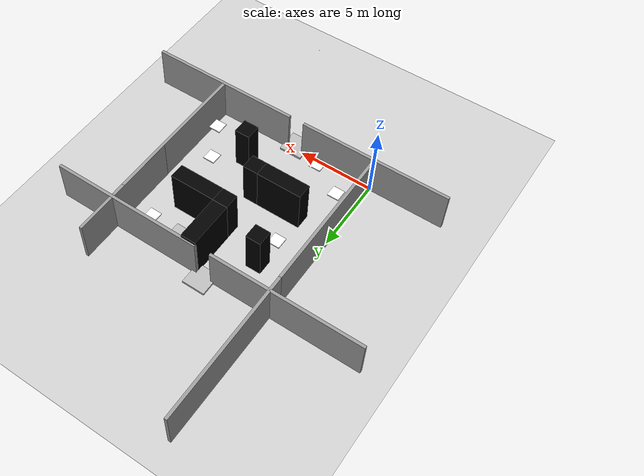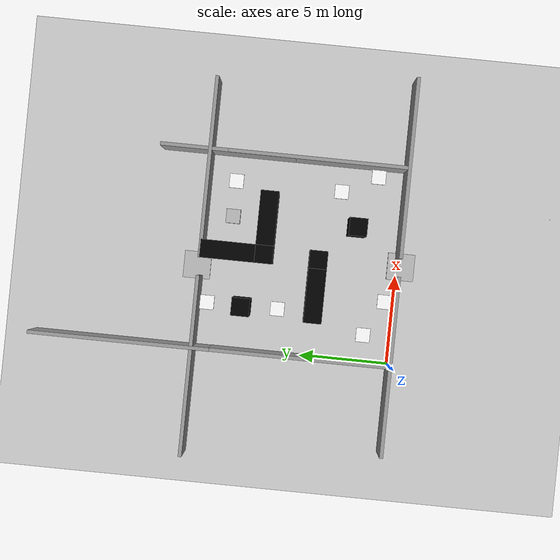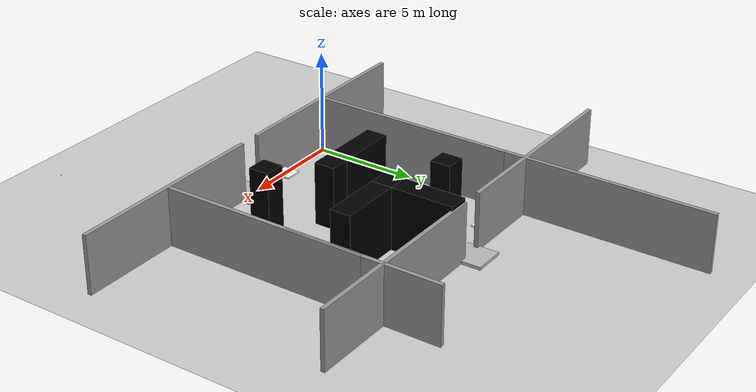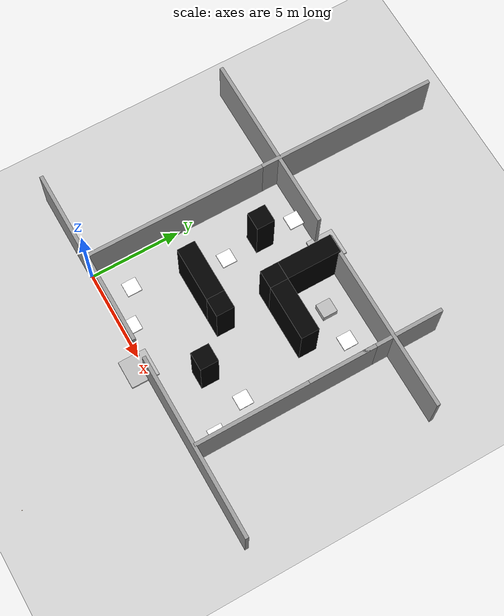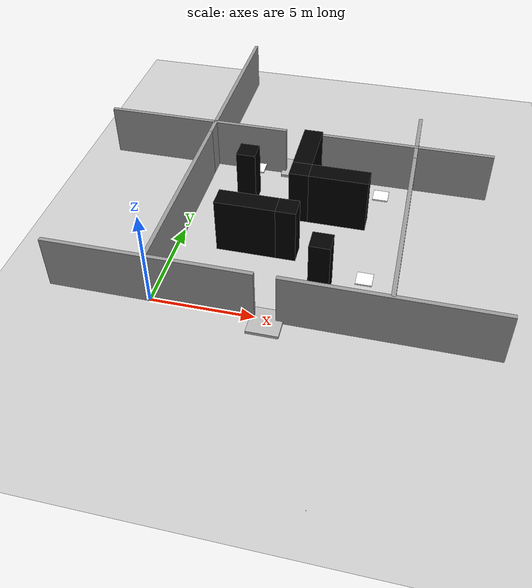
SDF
<sdf version="1.7">
 <world name="default">
  <plugin name="ros_interface_plugin" filename="librotors_gazebo_ros_interface_plugin.so"/>
  <light name="sun" type="directional">
   <pose>0 0 10 0 -0 0</pose>
   <diffuse>0.8 0.8 0.8 1</diffuse>
   <specular>0.2 0.2 0.2 1</specular>
   <attenuation>
    <range>1000</range>
    <constant>0.9</constant>
    <linear>0.01</linear>
    <quadratic>0.001</quadratic>
   </attenuation>
   <direction>-0.5 0.1 -0.9</direction>
   <spot><inner_angle>0</inner_angle><outer_angle>0</outer_angle><falloff>0</falloff></spot>
  </light>
  <model name="ground_plane">
   <static>1</static>
   <link name="link">
    <collision name="collision">
     <geometry><plane><normal>0 0 1</normal><size>100 100</size></plane></geometry>
     <surface><friction><ode><mu>100</mu><mu2>50</mu2></ode></friction></surface>
    </collision>
    <visual name="visual">
     <cast_shadows>0</cast_shadows>
     <geometry><plane><normal>0 0 1</normal><size>100 100</size></plane></geometry>
     <material>
      <script><uri>file://media/materials/scripts/gazebo.material</uri><name>Gazebo/Grey</name></script>
     </material>
    </visual>
   </link>
  </model>
  <gravity>0 0 -9.8</gravity>
  <magnetic_field>6e-06 2.3e-05 -4.2e-05</magnetic_field>
  <atmosphere type="adiabatic"/>
  <physics name="default_physics" default="0" type="ode">
   <max_step_size>0.01</max_step_size>
   <real_time_factor>1</real_time_factor>
   <real_time_update_rate>100</real_time_update_rate>
  </physics>
  <scene><ambient>0.4 0.4 0.4 1</ambient><background>0.7 0.7 0.7 1</background><shadows>1</shadows></scene>
  <audio><device>default</device></audio>
  <spherical_coordinates>
   <surface_model>EARTH_WGS84</surface_model>
   <latitude_deg>0</latitude_deg>
   <longitude_deg>0</longitude_deg>
   <elevation>0</elevation>
   <heading_deg>0</heading_deg>
  </spherical_coordinates>
  <model name="grey_wall_10">
   <link name="link">
    <pose>0 0 1.4 0 -0 0</pose>
    <inertial>
     <mass>1</mass>
     <inertia><ixx>1</ixx><ixy>0</ixy><ixz>0</ixz><iyy>1</iyy><iyz>0</iyz><izz>1</izz></inertia>
    </inertial>
    <visual name="visual">
     <cast_shadows>0</cast_shadows>
     <geometry><box><size>10 0.2 2.8</size></box></geometry>
     <material>
      <script>
       <uri>model://grey_wall/materials/scripts</uri>
       <uri>model://grey_wall/materials/textures</uri>
       <name>vrc/grey_wall</name>
      </script>
      <shader type="vertex"><normal_map>__default__</normal_map></shader>
      <ambient>1 1 1 1</ambient>
      <diffuse>1 1 1 1</diffuse>
      <specular>0 0 0 1</specular>
      <emissive>0 0 0 1</emissive>
     </material>
    </visual>
    <collision name="collision">
     <geometry><box><size>10 0.2 2.8</size></box></geometry>
     <surface>
      <friction>
       <ode><mu>1</mu><mu2>1</mu2><fdir1>0 0 0</fdir1><slip1>0</slip1><slip2>0</slip2></ode>
       <torsional>
        <coefficient>1</coefficient>
        <patch_radius>0</patch_radius>
        <surface_radius>0</surface_radius>
        <use_patch_radius>1</use_patch_radius>
        <ode><slip>0</slip></ode>
       </torsional>
      </friction>
      <bounce><restitution_coefficient>0</restitution_coefficient><threshold>1e+06</threshold></bounce>
      <contact>
       <collide_without_contact>0</collide_without_contact>
       <collide_without_contact_bitmask>1</collide_without_contact_bitmask>
       <collide_bitmask>1</collide_bitmask>
       <ode>
        <soft_cfm>0</soft_cfm>
        <soft_erp>0.2</soft_erp>
        <kp>1e+13</kp>
        <kd>1</kd>
        <max_vel>0.01</max_vel>
        <min_depth>0</min_depth>
       </ode>
       <bullet>
        <split_impulse>1</split_impulse>
        <split_impulse_penetration_threshold>-0.01</split_impulse_penetration_threshold>
        <soft_cfm>0</soft_cfm>
        <soft_erp>0.2</soft_erp>
        <kp>1e+13</kp>
        <kd>1</kd>
       </bullet>
      </contact>
     </surface>
    </collision>
   </link>
   <static>1</static>
  </model>
  <model name="grey_wall_10_0">
   <link name="link">
    <pose>0 0 1.4 0 -0 0</pose>
    <inertial>
     <mass>1</mass>
     <inertia><ixx>1</ixx><ixy>0</ixy><ixz>0</ixz><iyy>1</iyy><iyz>0</iyz><izz>1</izz></inertia>
    </inertial>
    <visual name="visual">
     <cast_shadows>0</cast_shadows>
     <geometry><box><size>10 0.2 2.8</size></box></geometry>
     <material>
      <script>
       <uri>model://grey_wall/materials/scripts</uri>
       <uri>model://grey_wall/materials/textures</uri>
       <name>vrc/grey_wall</name>
      </script>
      <shader type="vertex"><normal_map>__default__</normal_map></shader>
      <ambient>1 1 1 1</ambient>
      <diffuse>1 1 1 1</diffuse>
      <specular>0 0 0 1</specular>
      <emissive>0 0 0 1</emissive>
     </material>
    </visual>
    <collision name="collision">
     <geometry><box><size>10 0.2 2.8</size></box></geometry>
     <surface>
      <friction>
       <ode><mu>1</mu><mu2>1</mu2><fdir1>0 0 0</fdir1><slip1>0</slip1><slip2>0</slip2></ode>
       <torsional>
        <coefficient>1</coefficient>
        <patch_radius>0</patch_radius>
        <surface_radius>0</surface_radius>
        <use_patch_radius>1</use_patch_radius>
        <ode><slip>0</slip></ode>
       </torsional>
      </friction>
      <bounce><restitution_coefficient>0</restitution_coefficient><threshold>1e+06</threshold></bounce>
      <contact>
       <collide_without_contact>0</collide_without_contact>
       <collide_without_contact_bitmask>1</collide_without_contact_bitmask>
       <collide_bitmask>1</collide_bitmask>
       <ode>
        <soft_cfm>0</soft_cfm>
        <soft_erp>0.2</soft_erp>
        <kp>1e+13</kp>
        <kd>1</kd>
        <max_vel>0.01</max_vel>
        <min_depth>0</min_depth>
       </ode>
       <bullet>
        <split_impulse>1</split_impulse>
        <split_impulse_penetration_threshold>-0.01</split_impulse_penetration_threshold>
        <soft_cfm>0</soft_cfm>
        <soft_erp>0.2</soft_erp>
        <kp>1e+13</kp>
        <kd>1</kd>
       </bullet>
      </contact>
     </surface>
    </collision>
   </link>
   <static>1</static>
   <pose>10 11 0 0 -0 0</pose>
  </model>
  <model name="grey_wall_10_1">
   <link name="link">
    <pose>0 0 1.4 0 -0 0</pose>
    <inertial>
     <mass>1</mass>
     <inertia><ixx>1</ixx><ixy>0</ixy><ixz>0</ixz><iyy>1</iyy><iyz>0</iyz><izz>1</izz></inertia>
    </inertial>
    <visual name="visual">
     <cast_shadows>0</cast_shadows>
     <geometry><box><size>10 0.2 2.8</size></box></geometry>
     <material>
      <script>
       <uri>model://grey_wall/materials/scripts</uri>
       <uri>model://grey_wall/materials/textures</uri>
       <name>vrc/grey_wall</name>
      </script>
      <shader type="vertex"><normal_map>__default__</normal_map></shader>
      <ambient>1 1 1 1</ambient>
      <diffuse>1 1 1 1</diffuse>
      <specular>0 0 0 1</specular>
      <emissive>0 0 0 1</emissive>
     </material>
    </visual>
    <collision name="collision">
     <geometry><box><size>10 0.2 2.8</size></box></geometry>
     <surface>
      <friction>
       <ode><mu>1</mu><mu2>1</mu2><fdir1>0 0 0</fdir1><slip1>0</slip1><slip2>0</slip2></ode>
       <torsional>
        <coefficient>1</coefficient>
        <patch_radius>0</patch_radius>
        <surface_radius>0</surface_radius>
        <use_patch_radius>1</use_patch_radius>
        <ode><slip>0</slip></ode>
       </torsional>
      </friction>
      <bounce><restitution_coefficient>0</restitution_coefficient><threshold>1e+06</threshold></bounce>
      <contact>
       <collide_without_contact>0</collide_without_contact>
       <collide_without_contact_bitmask>1</collide_without_contact_bitmask>
       <collide_bitmask>1</collide_bitmask>
       <ode>
        <soft_cfm>0</soft_cfm>
        <soft_erp>0.2</soft_erp>
        <kp>1e+13</kp>
        <kd>1</kd>
        <max_vel>0.01</max_vel>
        <min_depth>0</min_depth>
       </ode>
       <bullet>
        <split_impulse>1</split_impulse>
        <split_impulse_penetration_threshold>-0.01</split_impulse_penetration_threshold>
        <soft_cfm>0</soft_cfm>
        <soft_erp>0.2</soft_erp>
        <kp>1e+13</kp>
        <kd>1</kd>
       </bullet>
      </contact>
     </surface>
    </collision>
   </link>
   <static>1</static>
   <pose>11 0 0 0 -0 0</pose>
  </model>
  <model name="grey_wall_10_2">
   <link name="link">
    <pose>0 0 1.4 0 -0 0</pose>
    <inertial>
     <mass>1</mass>
     <inertia><ixx>1</ixx><ixy>0</ixy><ixz>0</ixz><iyy>1</iyy><iyz>0</iyz><izz>1</izz></inertia>
    </inertial>
    <visual name="visual">
     <cast_shadows>0</cast_shadows>
     <geometry><box><size>10 0.2 2.8</size></box></geometry>
     <material>
      <script>
       <uri>model://grey_wall/materials/scripts</uri>
       <uri>model://grey_wall/materials/textures</uri>
       <name>vrc/grey_wall</name>
      </script>
      <shader type="vertex"><normal_map>__default__</normal_map></shader>
      <ambient>1 1 1 1</ambient>
      <diffuse>1 1 1 1</diffuse>
      <specular>0 0 0 1</specular>
      <emissive>0 0 0 1</emissive>
     </material>
    </visual>
    <collision name="collision">
     <geometry><box><size>10 0.2 2.8</size></box></geometry>
     <surface>
      <friction>
       <ode><mu>1</mu><mu2>1</mu2><fdir1>0 0 0</fdir1><slip1>0</slip1><slip2>0</slip2></ode>
       <torsional>
        <coefficient>1</coefficient>
        <patch_radius>0</patch_radius>
        <surface_radius>0</surface_radius>
        <use_patch_radius>1</use_patch_radius>
        <ode><slip>0</slip></ode>
       </torsional>
      </friction>
      <bounce><restitution_coefficient>0</restitution_coefficient><threshold>1e+06</threshold></bounce>
      <contact>
       <collide_without_contact>0</collide_without_contact>
       <collide_without_contact_bitmask>1</collide_without_contact_bitmask>
       <collide_bitmask>1</collide_bitmask>
       <ode>
        <soft_cfm>0</soft_cfm>
        <soft_erp>0.2</soft_erp>
        <kp>1e+13</kp>
        <kd>1</kd>
        <max_vel>0.01</max_vel>
        <min_depth>0</min_depth>
       </ode>
       <bullet>
        <split_impulse>1</split_impulse>
        <split_impulse_penetration_threshold>-0.01</split_impulse_penetration_threshold>
        <soft_cfm>0</soft_cfm>
        <soft_erp>0.2</soft_erp>
        <kp>1e+13</kp>
        <kd>1</kd>
       </bullet>
      </contact>
     </surface>
    </collision>
   </link>
   <static>1</static>
   <pose>0 5 0 0 -0 1.57</pose>
  </model>
  <model name="grey_wall_10_3">
   <link name="link">
    <pose>0 0 1.4 0 -0 0</pose>
    <inertial>
     <mass>1</mass>
     <inertia><ixx>1</ixx><ixy>0</ixy><ixz>0</ixz><iyy>1</iyy><iyz>0</iyz><izz>1</izz></inertia>
    </inertial>
    <visual name="visual">
     <cast_shadows>0</cast_shadows>
     <geometry><box><size>10 0.2 2.8</size></box></geometry>
     <material>
      <script>
       <uri>model://grey_wall/materials/scripts</uri>
       <uri>model://grey_wall/materials/textures</uri>
       <name>vrc/grey_wall</name>
      </script>
      <shader type="vertex"><normal_map>__default__</normal_map></shader>
      <ambient>1 1 1 1</ambient>
      <diffuse>1 1 1 1</diffuse>
      <specular>0 0 0 1</specular>
      <emissive>0 0 0 1</emissive>
     </material>
    </visual>
    <collision name="collision">
     <geometry><box><size>10 0.2 2.8</size></box></geometry>
     <surface>
      <friction>
       <ode><mu>1</mu><mu2>1</mu2><fdir1>0 0 0</fdir1><slip1>0</slip1><slip2>0</slip2></ode>
       <torsional>
        <coefficient>1</coefficient>
        <patch_radius>0</patch_radius>
        <surface_radius>0</surface_radius>
        <use_patch_radius>1</use_patch_radius>
        <ode><slip>0</slip></ode>
       </torsional>
      </friction>
      <bounce><restitution_coefficient>0</restitution_coefficient><threshold>1e+06</threshold></bounce>
      <contact>
       <collide_without_contact>0</collide_without_contact>
       <collide_without_contact_bitmask>1</collide_without_contact_bitmask>
       <collide_bitmask>1</collide_bitmask>
       <ode>
        <soft_cfm>0</soft_cfm>
        <soft_erp>0.2</soft_erp>
        <kp>1e+13</kp>
        <kd>1</kd>
        <max_vel>0.01</max_vel>
        <min_depth>0</min_depth>
       </ode>
       <bullet>
        <split_impulse>1</split_impulse>
        <split_impulse_penetration_threshold>-0.01</split_impulse_penetration_threshold>
        <soft_cfm>0</soft_cfm>
        <soft_erp>0.2</soft_erp>
        <kp>1e+13</kp>
        <kd>1</kd>
       </bullet>
      </contact>
     </surface>
    </collision>
   </link>
   <static>1</static>
   <pose>11 5 0 0 -0 1.57</pose>
  </model>
  <model name="grey_wall_10_4">
   <link name="link">
    <pose>0 0 1.4 0 -0 0</pose>
    <inertial>
     <mass>1</mass>
     <inertia><ixx>1</ixx><ixy>0</ixy><ixz>0</ixz><iyy>1</iyy><iyz>0</iyz><izz>1</izz></inertia>
    </inertial>
    <visual name="visual">
     <cast_shadows>0</cast_shadows>
     <geometry><box><size>10 0.2 2.8</size></box></geometry>
     <material>
      <script>
       <uri>model://grey_wall/materials/scripts</uri>
       <uri>model://grey_wall/materials/textures</uri>
       <name>vrc/grey_wall</name>
      </script>
      <shader type="vertex"><normal_map>__default__</normal_map></shader>
      <ambient>1 1 1 1</ambient>
      <diffuse>1 1 1 1</diffuse>
      <specular>0 0 0 1</specular>
      <emissive>0 0 0 1</emissive>
     </material>
    </visual>
    <collision name="collision">
     <geometry><box><size>10 0.2 2.8</size></box></geometry>
     <surface>
      <friction>
       <ode><mu>1</mu><mu2>1</mu2><fdir1>0 0 0</fdir1><slip1>0</slip1><slip2>0</slip2></ode>
       <torsional>
        <coefficient>1</coefficient>
        <patch_radius>0</patch_radius>
        <surface_radius>0</surface_radius>
        <use_patch_radius>1</use_patch_radius>
        <ode><slip>0</slip></ode>
       </torsional>
      </friction>
      <bounce><restitution_coefficient>0</restitution_coefficient><threshold>1e+06</threshold></bounce>
      <contact>
       <collide_without_contact>0</collide_without_contact>
       <collide_without_contact_bitmask>1</collide_without_contact_bitmask>
       <collide_bitmask>1</collide_bitmask>
       <ode>
        <soft_cfm>0</soft_cfm>
        <soft_erp>0.2</soft_erp>
        <kp>1e+13</kp>
        <kd>1</kd>
        <max_vel>0.01</max_vel>
        <min_depth>0</min_depth>
       </ode>
       <bullet>
        <split_impulse>1</split_impulse>
        <split_impulse_penetration_threshold>-0.01</split_impulse_penetration_threshold>
        <soft_cfm>0</soft_cfm>
        <soft_erp>0.2</soft_erp>
        <kp>1e+13</kp>
        <kd>1</kd>
       </bullet>
      </contact>
     </surface>
    </collision>
   </link>
   <static>1</static>
   <pose>0 15 0 0 -0 1.57</pose>
  </model>
  <model name="grey_wall_10_6">
   <link name="link">
    <pose>0 0 1.4 0 -0 0</pose>
    <inertial>
     <mass>1</mass>
     <inertia><ixx>1</ixx><ixy>0</ixy><ixz>0</ixz><iyy>1</iyy><iyz>0</iyz><izz>1</izz></inertia>
    </inertial>
    <visual name="visual">
     <cast_shadows>0</cast_shadows>
     <geometry><box><size>10 0.2 2.8</size></box></geometry>
     <material>
      <script>
       <uri>model://grey_wall/materials/scripts</uri>
       <uri>model://grey_wall/materials/textures</uri>
       <name>vrc/grey_wall</name>
      </script>
      <shader type="vertex"><normal_map>__default__</normal_map></shader>
      <ambient>1 1 1 1</ambient>
      <diffuse>1 1 1 1</diffuse>
      <specular>0 0 0 1</specular>
      <emissive>0 0 0 1</emissive>
     </material>
    </visual>
    <collision name="collision">
     <geometry><box><size>10 0.2 2.8</size></box></geometry>
     <surface>
      <friction>
       <ode><mu>1</mu><mu2>1</mu2><fdir1>0 0 0</fdir1><slip1>0</slip1><slip2>0</slip2></ode>
       <torsional>
        <coefficient>1</coefficient>
        <patch_radius>0</patch_radius>
        <surface_radius>0</surface_radius>
        <use_patch_radius>1</use_patch_radius>
        <ode><slip>0</slip></ode>
       </torsional>
      </friction>
      <bounce><restitution_coefficient>0</restitution_coefficient><threshold>1e+06</threshold></bounce>
      <contact>
       <collide_without_contact>0</collide_without_contact>
       <collide_without_contact_bitmask>1</collide_without_contact_bitmask>
       <collide_bitmask>1</collide_bitmask>
       <ode>
        <soft_cfm>0</soft_cfm>
        <soft_erp>0.2</soft_erp>
        <kp>1e+13</kp>
        <kd>1</kd>
        <max_vel>0.01</max_vel>
        <min_depth>0</min_depth>
       </ode>
       <bullet>
        <split_impulse>1</split_impulse>
        <split_impulse_penetration_threshold>-0.01</split_impulse_penetration_threshold>
        <soft_cfm>0</soft_cfm>
        <soft_erp>0.2</soft_erp>
        <kp>1e+13</kp>
        <kd>1</kd>
       </bullet>
      </contact>
     </surface>
    </collision>
   </link>
   <static>1</static>
   <pose>-1 11 0 0 -0 0</pose>
  </model>
  <model name="brick_box_3x1x3_black_0">
   <link name="chassis">
    <pose>0 0 1.5 0 -0 0</pose>
    <inertial>
     <mass>1</mass>
     <inertia><ixx>1</ixx><ixy>0</ixy><ixz>0</ixz><iyy>1</iyy><iyz>0</iyz><izz>1</izz></inertia>
    </inertial>
    <visual name="visual">
     <geometry><mesh><uri>model://brick_box_3x1x3/meshes/simple_box.dae</uri><scale>3 1 3</scale></mesh></geometry>
     <material>
      <script>
       <uri>model://brick_box_3x1x3/materials/scripts</uri>
       <uri>model://brick_box_3x1x3/materials/textures</uri>
       <name>BrickBox/Diffuse</name>
      </script>
      <shader type="vertex"><normal_map>__default__</normal_map></shader>
      <ambient>0 0 0 1</ambient>
      <diffuse>0 0 0 1</diffuse>
      <specular>0 0 0 1</specular>
      <emissive>0 0 0 1</emissive>
      <lighting>1</lighting>
     </material>
    </visual>
    <collision name="collision">
     <geometry><box><size>3 1 3</size></box></geometry>
     <surface>
      <friction>
       <ode><mu>1</mu><mu2>1</mu2><fdir1>0 0 0</fdir1><slip1>0</slip1><slip2>0</slip2></ode>
       <torsional>
        <coefficient>1</coefficient>
        <patch_radius>0</patch_radius>
        <surface_radius>0</surface_radius>
        <use_patch_radius>1</use_patch_radius>
        <ode><slip>0</slip></ode>
       </torsional>
      </friction>
      <bounce><restitution_coefficient>0</restitution_coefficient><threshold>1e+06</threshold></bounce>
      <contact>
       <collide_without_contact>0</collide_without_contact>
       <collide_without_contact_bitmask>1</collide_without_contact_bitmask>
       <collide_bitmask>1</collide_bitmask>
       <ode>
        <soft_cfm>0</soft_cfm>
        <soft_erp>0.2</soft_erp>
        <kp>1e+13</kp>
        <kd>1</kd>
        <max_vel>0.01</max_vel>
        <min_depth>0</min_depth>
       </ode>
       <bullet>
        <split_impulse>1</split_impulse>
        <split_impulse_penetration_threshold>-0.01</split_impulse_penetration_threshold>
        <soft_cfm>0</soft_cfm>
        <soft_erp>0.2</soft_erp>
        <kp>1e+13</kp>
        <kd>1</kd>
       </bullet>
      </contact>
     </surface>
    </collision>
   </link>
   <static>1</static>
   <pose>7.5 7.5 0 0 -0 0</pose>
  </model>
  <model name="brick_box_3x1x3_black_1">
   <link name="chassis">
    <pose>0 0 1.5 0 -0 0</pose>
    <inertial>
     <mass>1</mass>
     <inertia><ixx>1</ixx><ixy>0</ixy><ixz>0</ixz><iyy>1</iyy><iyz>0</iyz><izz>1</izz></inertia>
    </inertial>
    <visual name="visual">
     <geometry><mesh><uri>model://brick_box_3x1x3/meshes/simple_box.dae</uri><scale>3 1 3</scale></mesh></geometry>
     <material>
      <script>
       <uri>model://brick_box_3x1x3/materials/scripts</uri>
       <uri>model://brick_box_3x1x3/materials/textures</uri>
       <name>BrickBox/Diffuse</name>
      </script>
      <shader type="vertex"><normal_map>__default__</normal_map></shader>
      <ambient>0 0 0 1</ambient>
      <diffuse>0 0 0 1</diffuse>
      <specular>0 0 0 1</specular>
      <emissive>0 0 0 1</emissive>
      <lighting>1</lighting>
     </material>
    </visual>
    <collision name="collision">
     <geometry><box><size>3 1 3</size></box></geometry>
     <surface>
      <friction>
       <ode><mu>1</mu><mu2>1</mu2><fdir1>0 0 0</fdir1><slip1>0</slip1><slip2>0</slip2></ode>
       <torsional>
        <coefficient>1</coefficient>
        <patch_radius>0</patch_radius>
        <surface_radius>0</surface_radius>
        <use_patch_radius>1</use_patch_radius>
        <ode><slip>0</slip></ode>
       </torsional>
      </friction>
      <bounce><restitution_coefficient>0</restitution_coefficient><threshold>1e+06</threshold></bounce>
      <contact>
       <collide_without_contact>0</collide_without_contact>
       <collide_without_contact_bitmask>1</collide_without_contact_bitmask>
       <collide_bitmask>1</collide_bitmask>
       <ode>
        <soft_cfm>0</soft_cfm>
        <soft_erp>0.2</soft_erp>
        <kp>1e+13</kp>
        <kd>1</kd>
        <max_vel>0.01</max_vel>
        <min_depth>0</min_depth>
       </ode>
       <bullet>
        <split_impulse>1</split_impulse>
        <split_impulse_penetration_threshold>-0.01</split_impulse_penetration_threshold>
        <soft_cfm>0</soft_cfm>
        <soft_erp>0.2</soft_erp>
        <kp>1e+13</kp>
        <kd>1</kd>
       </bullet>
      </contact>
     </surface>
    </collision>
   </link>
   <static>1</static>
   <pose>5.5 9.5 0 0 -0 1.57</pose>
  </model>
  <model name="brick_box_3x1x3_black_2">
   <link name="chassis">
    <pose>0 0 1.5 0 -0 0</pose>
    <inertial>
     <mass>1</mass>
     <inertia><ixx>1</ixx><ixy>0</ixy><ixz>0</ixz><iyy>1</iyy><iyz>0</iyz><izz>1</izz></inertia>
    </inertial>
    <visual name="visual">
     <geometry><mesh><uri>model://brick_box_3x1x3/meshes/simple_box.dae</uri><scale>3 1 3</scale></mesh></geometry>
     <material>
      <script>
       <uri>model://brick_box_3x1x3/materials/scripts</uri>
       <uri>model://brick_box_3x1x3/materials/textures</uri>
       <name>BrickBox/Diffuse</name>
      </script>
      <shader type="vertex"><normal_map>__default__</normal_map></shader>
      <ambient>0 0 0 1</ambient>
      <diffuse>0 0 0 1</diffuse>
      <specular>0 0 0 1</specular>
      <emissive>0 0 0 1</emissive>
      <lighting>1</lighting>
     </material>
    </visual>
    <collision name="collision">
     <geometry><box><size>3 1 3</size></box></geometry>
     <surface>
      <friction>
       <ode><mu>1</mu><mu2>1</mu2><fdir1>0 0 0</fdir1><slip1>0</slip1><slip2>0</slip2></ode>
       <torsional>
        <coefficient>1</coefficient>
        <patch_radius>0</patch_radius>
        <surface_radius>0</surface_radius>
        <use_patch_radius>1</use_patch_radius>
        <ode><slip>0</slip></ode>
       </torsional>
      </friction>
      <bounce><restitution_coefficient>0</restitution_coefficient><threshold>1e+06</threshold></bounce>
      <contact>
       <collide_without_contact>0</collide_without_contact>
       <collide_without_contact_bitmask>1</collide_without_contact_bitmask>
       <collide_bitmask>1</collide_bitmask>
       <ode>
        <soft_cfm>0</soft_cfm>
        <soft_erp>0.2</soft_erp>
        <kp>1e+13</kp>
        <kd>1</kd>
        <max_vel>0.01</max_vel>
        <min_depth>0</min_depth>
       </ode>
       <bullet>
        <split_impulse>1</split_impulse>
        <split_impulse_penetration_threshold>-0.01</split_impulse_penetration_threshold>
        <soft_cfm>0</soft_cfm>
        <soft_erp>0.2</soft_erp>
        <kp>1e+13</kp>
        <kd>1</kd>
       </bullet>
      </contact>
     </surface>
    </collision>
   </link>
   <static>1</static>
   <pose>3.5 4.5 0 0 -0 0</pose>
  </model>
  <model name="brick_box_1_B_7">
   <link name="chassis">
    <pose>0 0 1.5 0 -0 0</pose>
    <inertial>
     <mass>1</mass>
     <inertia><ixx>1</ixx><ixy>0</ixy><ixz>0</ixz><iyy>1</iyy><iyz>0</iyz><izz>1</izz></inertia>
    </inertial>
    <visual name="visual">
     <geometry><mesh><uri>model://brick_box_3x1x3/meshes/simple_box.dae</uri><scale>1 1 3</scale></mesh></geometry>
     <material>
      <script>
       <uri>model://brick_box_3x1x3/materials/scripts</uri>
       <uri>model://brick_box_3x1x3/materials/textures</uri>
       <name>BrickBox/Diffuse</name>
      </script>
      <shader type="vertex"><normal_map>__default__</normal_map></shader>
      <ambient>0 0 0 1</ambient>
      <diffuse>0 0 0 1</diffuse>
      <specular>0 0 0 1</specular>
      <emissive>0 0 0 1</emissive>
      <lighting>1</lighting>
     </material>
    </visual>
    <collision name="collision">
     <geometry><box><size>1 1 3</size></box></geometry>
     <surface>
      <friction>
       <ode><mu>1</mu><mu2>1</mu2><fdir1>0 0 0</fdir1><slip1>0</slip1><slip2>0</slip2></ode>
       <torsional>
        <coefficient>1</coefficient>
        <patch_radius>0</patch_radius>
        <surface_radius>0</surface_radius>
        <use_patch_radius>1</use_patch_radius>
        <ode><slip>0</slip></ode>
       </torsional>
      </friction>
      <bounce><restitution_coefficient>0</restitution_coefficient><threshold>1e+06</threshold></bounce>
      <contact>
       <collide_without_contact>0</collide_without_contact>
       <collide_without_contact_bitmask>1</collide_without_contact_bitmask>
       <collide_bitmask>1</collide_bitmask>
       <ode>
        <soft_cfm>0</soft_cfm>
        <soft_erp>0.2</soft_erp>
        <kp>1e+13</kp>
        <kd>1</kd>
        <max_vel>0.01</max_vel>
        <min_depth>0</min_depth>
       </ode>
       <bullet>
        <split_impulse>1</split_impulse>
        <split_impulse_penetration_threshold>-0.01</split_impulse_penetration_threshold>
        <soft_cfm>0</soft_cfm>
        <soft_erp>0.2</soft_erp>
        <kp>1e+13</kp>
        <kd>1</kd>
       </bullet>
      </contact>
     </surface>
    </collision>
   </link>
   <static>1</static>
   <pose>2.5 8.5 0 0 -0 0</pose>
  </model>
  <model name="brick_box_1_B_8">
   <link name="chassis">
    <pose>0 0 1.5 0 -0 0</pose>
    <inertial>
     <mass>1</mass>
     <inertia><ixx>1</ixx><ixy>0</ixy><ixz>0</ixz><iyy>1</iyy><iyz>0</iyz><izz>1</izz></inertia>
    </inertial>
    <visual name="visual">
     <geometry><mesh><uri>model://brick_box_3x1x3/meshes/simple_box.dae</uri><scale>1 1 3</scale></mesh></geometry>
     <material>
      <script>
       <uri>model://brick_box_3x1x3/materials/scripts</uri>
       <uri>model://brick_box_3x1x3/materials/textures</uri>
       <name>BrickBox/Diffuse</name>
      </script>
      <shader type="vertex"><normal_map>__default__</normal_map></shader>
      <ambient>0 0 0 1</ambient>
      <diffuse>0 0 0 1</diffuse>
      <specular>0 0 0 1</specular>
      <emissive>0 0 0 1</emissive>
      <lighting>1</lighting>
     </material>
    </visual>
    <collision name="collision">
     <geometry><box><size>1 1 3</size></box></geometry>
     <surface>
      <friction>
       <ode><mu>1</mu><mu2>1</mu2><fdir1>0 0 0</fdir1><slip1>0</slip1><slip2>0</slip2></ode>
       <torsional>
        <coefficient>1</coefficient>
        <patch_radius>0</patch_radius>
        <surface_radius>0</surface_radius>
        <use_patch_radius>1</use_patch_radius>
        <ode><slip>0</slip></ode>
       </torsional>
      </friction>
      <bounce><restitution_coefficient>0</restitution_coefficient><threshold>1e+06</threshold></bounce>
      <contact>
       <collide_without_contact>0</collide_without_contact>
       <collide_without_contact_bitmask>1</collide_without_contact_bitmask>
       <collide_bitmask>1</collide_bitmask>
       <ode>
        <soft_cfm>0</soft_cfm>
        <soft_erp>0.2</soft_erp>
        <kp>1e+13</kp>
        <kd>1</kd>
        <max_vel>0.01</max_vel>
        <min_depth>0</min_depth>
       </ode>
       <bullet>
        <split_impulse>1</split_impulse>
        <split_impulse_penetration_threshold>-0.01</split_impulse_penetration_threshold>
        <soft_cfm>0</soft_cfm>
        <soft_erp>0.2</soft_erp>
        <kp>1e+13</kp>
        <kd>1</kd>
       </bullet>
      </contact>
     </surface>
    </collision>
   </link>
   <static>1</static>
   <pose>7.5 2.5 0 0 -0 0</pose>
  </model>
  <model name="brick_box_1_B_9">
   <link name="chassis">
    <pose>0 0 1.5 0 -0 0</pose>
    <inertial>
     <mass>1</mass>
     <inertia><ixx>1</ixx><ixy>0</ixy><ixz>0</ixz><iyy>1</iyy><iyz>0</iyz><izz>1</izz></inertia>
    </inertial>
    <visual name="visual">
     <geometry><mesh><uri>model://brick_box_3x1x3/meshes/simple_box.dae</uri><scale>1 1 3</scale></mesh></geometry>
     <material>
      <script>
       <uri>model://brick_box_3x1x3/materials/scripts</uri>
       <uri>model://brick_box_3x1x3/materials/textures</uri>
       <name>BrickBox/Diffuse</name>
      </script>
      <shader type="vertex"><normal_map>__default__</normal_map></shader>
      <ambient>0 0 0 1</ambient>
      <diffuse>0 0 0 1</diffuse>
      <specular>0 0 0 1</specular>
      <emissive>0 0 0 1</emissive>
      <lighting>1</lighting>
     </material>
    </visual>
    <collision name="collision">
     <geometry><box><size>1 1 3</size></box></geometry>
     <surface>
      <friction>
       <ode><mu>1</mu><mu2>1</mu2><fdir1>0 0 0</fdir1><slip1>0</slip1><slip2>0</slip2></ode>
       <torsional>
        <coefficient>1</coefficient>
        <patch_radius>0</patch_radius>
        <surface_radius>0</surface_radius>
        <use_patch_radius>1</use_patch_radius>
        <ode><slip>0</slip></ode>
       </torsional>
      </friction>
      <bounce><restitution_coefficient>0</restitution_coefficient><threshold>1e+06</threshold></bounce>
      <contact>
       <collide_without_contact>0</collide_without_contact>
       <collide_without_contact_bitmask>1</collide_without_contact_bitmask>
       <collide_bitmask>1</collide_bitmask>
       <ode>
        <soft_cfm>0</soft_cfm>
        <soft_erp>0.2</soft_erp>
        <kp>1e+13</kp>
        <kd>1</kd>
        <max_vel>0.01</max_vel>
        <min_depth>0</min_depth>
       </ode>
       <bullet>
        <split_impulse>1</split_impulse>
        <split_impulse_penetration_threshold>-0.01</split_impulse_penetration_threshold>
        <soft_cfm>0</soft_cfm>
        <soft_erp>0.2</soft_erp>
        <kp>1e+13</kp>
        <kd>1</kd>
       </bullet>
      </contact>
     </surface>
    </collision>
   </link>
   <static>1</static>
   <pose>5.5 7.5 0 0 -0 0</pose>
  </model>
  <model name="brick_box_1_B_10">
   <link name="chassis">
    <pose>0 0 1.5 0 -0 0</pose>
    <inertial>
     <mass>1</mass>
     <inertia><ixx>1</ixx><ixy>0</ixy><ixz>0</ixz><iyy>1</iyy><iyz>0</iyz><izz>1</izz></inertia>
    </inertial>
    <visual name="visual">
     <geometry><mesh><uri>model://brick_box_3x1x3/meshes/simple_box.dae</uri><scale>1 1 3</scale></mesh></geometry>
     <material>
      <script>
       <uri>model://brick_box_3x1x3/materials/scripts</uri>
       <uri>model://brick_box_3x1x3/materials/textures</uri>
       <name>BrickBox/Diffuse</name>
      </script>
      <shader type="vertex"><normal_map>__default__</normal_map></shader>
      <ambient>0 0 0 1</ambient>
      <diffuse>0 0 0 1</diffuse>
      <specular>0 0 0 1</specular>
      <emissive>0 0 0 1</emissive>
      <lighting>1</lighting>
     </material>
    </visual>
    <collision name="collision">
     <geometry><box><size>1 1 3</size></box></geometry>
     <surface>
      <friction>
       <ode><mu>1</mu><mu2>1</mu2><fdir1>0 0 0</fdir1><slip1>0</slip1><slip2>0</slip2></ode>
       <torsional>
        <coefficient>1</coefficient>
        <patch_radius>0</patch_radius>
        <surface_radius>0</surface_radius>
        <use_patch_radius>1</use_patch_radius>
        <ode><slip>0</slip></ode>
       </torsional>
      </friction>
      <bounce><restitution_coefficient>0</restitution_coefficient><threshold>1e+06</threshold></bounce>
      <contact>
       <collide_without_contact>0</collide_without_contact>
       <collide_without_contact_bitmask>1</collide_without_contact_bitmask>
       <collide_bitmask>1</collide_bitmask>
       <ode>
        <soft_cfm>0</soft_cfm>
        <soft_erp>0.2</soft_erp>
        <kp>1e+13</kp>
        <kd>1</kd>
        <max_vel>0.01</max_vel>
        <min_depth>0</min_depth>
       </ode>
       <bullet>
        <split_impulse>1</split_impulse>
        <split_impulse_penetration_threshold>-0.01</split_impulse_penetration_threshold>
        <soft_cfm>0</soft_cfm>
        <soft_erp>0.2</soft_erp>
        <kp>1e+13</kp>
        <kd>1</kd>
       </bullet>
      </contact>
     </surface>
    </collision>
   </link>
   <static>1</static>
   <pose>5.5 4.5 0 0 -0 0</pose>
  </model>
  <model name="number1_0">
   <pose>7.5 9.5 0 0 -0 3.14</pose>
   <static>1</static>
   <link name="link">
    <visual name="visual">
     <geometry><mesh><uri>model://number1/meshes/number.dae</uri></mesh></geometry>
     <material>
      <script>
       <uri>model://number1/materials/scripts</uri>
       <uri>model://number1/materials/textures</uri>
       <name>Number/One</name>
      </script>
     </material>
    </visual>
   </link>
  </model>
  <model name="number3_short_1_clone">
   <link name="link">
    <inertial>
     <mass>1</mass>
     <inertia><ixx>1</ixx><ixy>0</ixy><ixz>0</ixz><iyy>1</iyy><iyz>0</iyz><izz>1</izz></inertia>
    </inertial>
    <visual name="visual">
     <geometry><mesh><uri>model://number1/meshes/number.dae</uri><scale>1 1 0.1</scale></mesh></geometry>
     <material>
      <script>
       <uri>model://number3/materials/scripts</uri>
       <uri>model://number3/materials/textures</uri>
       <name>Number/Three</name>
      </script>
      <shader type="pixel"><normal_map>__default__</normal_map></shader>
      <ambient>1 1 1 1</ambient>
      <diffuse>1 1 1 1</diffuse>
      <specular>0 0 0 1</specular>
      <emissive>0 0 0 1</emissive>
     </material>
    </visual>
   </link>
   <static>1</static>
   <pose>2.5 6.5 0 0 -0 3.14</pose>
  </model>
  <model name="number2_short_0">
   <link name="link">
    <inertial>
     <mass>1</mass>
     <inertia><ixx>1</ixx><ixy>0</ixy><ixz>0</ixz><iyy>1</iyy><iyz>0</iyz><izz>1</izz></inertia>
    </inertial>
    <visual name="visual">
     <geometry><mesh><uri>model://number1/meshes/number.dae</uri><scale>1 1 0.1</scale></mesh></geometry>
     <material>
      <script>
       <uri>model://number2/materials/scripts</uri>
       <uri>model://number2/materials/textures</uri>
       <name>Number/Two</name>
      </script>
      <shader type="pixel"><normal_map>__default__</normal_map></shader>
      <ambient>1 1 1 1</ambient>
      <diffuse>1 1 1 1</diffuse>
      <specular>0 0 0 1</specular>
      <emissive>0 0 0 1</emissive>
     </material>
    </visual>
   </link>
   <static>1</static>
   <pose>9.5 3.5 0 0 -0 3.14</pose>
  </model>
  <model name="number4_short">
   <link name="link">
    <inertial>
     <mass>1</mass>
     <inertia><ixx>1</ixx><ixy>0</ixy><ixz>0</ixz><iyy>1</iyy><iyz>0</iyz><izz>1</izz></inertia>
    </inertial>
    <visual name="visual">
     <geometry><mesh><uri>model://number1/meshes/number.dae</uri><scale>1 1 0.1</scale></mesh></geometry>
     <material>
      <script>
       <uri>model://number4/materials/scripts</uri>
       <uri>model://number4/materials/textures</uri>
       <name>Number/Four</name>
      </script>
      <shader type="pixel"><normal_map>__default__</normal_map></shader>
      <ambient>1 1 1 1</ambient>
      <diffuse>1 1 1 1</diffuse>
      <specular>0 0 0 1</specular>
      <emissive>0 0 0 1</emissive>
     </material>
    </visual>
   </link>
   <static>1</static>
   <pose>1.5 1.5 0 0 -0 3.14</pose>
  </model>
  <model name="wood_cube_2_5cm">
   <link name="link">
    <pose>0 0 0.0125 0 -0 0</pose>
    <inertial>
     <mass>0.0073</mass>
     <inertia>
      <ixx>7.60417e-07</ixx>
      <ixy>0</ixy>
      <ixz>0</ixz>
      <iyy>7.60417e-07</iyy>
      <iyz>0</iyz>
      <izz>7.60417e-07</izz>
     </inertia>
    </inertial>
    <collision name="collision">
     <geometry><box><size>0.025 0.025 0.025</size></box></geometry>
     <surface>
      <contact>
       <poissons_ratio>0.347</poissons_ratio>
       <elastic_modulus>8.8e+09</elastic_modulus>
       <ode><kp>100000</kp><kd>100</kd><max_vel>100</max_vel><min_depth>0.001</min_depth></ode>
      </contact>
      <friction>
       <torsional>
        <coefficient>1</coefficient>
        <use_patch_radius>0</use_patch_radius>
        <surface_radius>0.01</surface_radius>
       </torsional>
      </friction>
     </surface>
    </collision>
    <visual name="visual">
     <geometry><box><size>0.025 0.025 0.025</size></box></geometry>
     <material>
      <script><uri>file://media/materials/scripts/gazebo.material</uri><name>Gazebo/Wood</name></script>
     </material>
    </visual>
   </link>
   <pose>9.08295 -8.46454 -0.000522 2e-06 2e-06 0</pose>
  </model>
  <model name="number7">
   <link name="link">
    <inertial>
     <mass>1</mass>
     <inertia><ixx>1</ixx><ixy>0</ixy><ixz>0</ixz><iyy>1</iyy><iyz>0</iyz><izz>1</izz></inertia>
    </inertial>
    <visual name="visual">
     <geometry><mesh><uri>model://number1/meshes/number.dae</uri><scale>1 1 0.1</scale></mesh></geometry>
     <material>
      <script>
       <uri>model://number7/materials/scripts</uri>
       <uri>model://number7/materials/textures</uri>
       <name>Number/Seven</name>
      </script>
      <shader type="pixel"><normal_map>__default__</normal_map></shader>
      <ambient>1 1 1 1</ambient>
      <diffuse>1 1 1 1</diffuse>
      <specular>0 0 0 1</specular>
      <emissive>0 0 0 1</emissive>
     </material>
    </visual>
   </link>
   <static>1</static>
   <pose>2.5 10.5 0.4 0 -0 3.14</pose>
  </model>
  <model name="number6">
   <link name="link">
    <inertial>
     <mass>1</mass>
     <inertia><ixx>1</ixx><ixy>0</ixy><ixz>0</ixz><iyy>1</iyy><iyz>0</iyz><izz>1</izz></inertia>
    </inertial>
    <visual name="visual">
     <geometry><mesh><uri>model://number1/meshes/number.dae</uri><scale>1 1 0.1</scale></mesh></geometry>
     <material>
      <script>
       <uri>model://number6/materials/scripts</uri>
       <uri>model://number6/materials/textures</uri>
       <name>Number/Six</name>
      </script>
      <shader type="pixel"><normal_map>__default__</normal_map></shader>
      <ambient>1 1 1 1</ambient>
      <diffuse>1 1 1 1</diffuse>
      <specular>0 0 0 1</specular>
      <emissive>0 0 0 1</emissive>
     </material>
    </visual>
   </link>
   <static>1</static>
   <pose>10.5 1.5 0.4 0 -0 3.14</pose>
  </model>
  <model name="number5">
   <link name="link">
    <inertial>
     <mass>1</mass>
     <inertia><ixx>1</ixx><ixy>0</ixy><ixz>0</ixz><iyy>1</iyy><iyz>0</iyz><izz>1</izz></inertia>
    </inertial>
    <visual name="visual">
     <geometry><mesh><uri>model://number1/meshes/number.dae</uri><scale>1 1 0.1</scale></mesh></geometry>
     <material>
      <script>
       <uri>model://number5/materials/scripts</uri>
       <uri>model://number5/materials/textures</uri>
       <name>Number/Five</name>
      </script>
      <shader type="pixel"><normal_map>__default__</normal_map></shader>
      <ambient>1 1 1 1</ambient>
      <diffuse>1 1 1 1</diffuse>
      <specular>0 0 0 1</specular>
      <emissive>0 0 0 1</emissive>
     </material>
    </visual>
   </link>
   <static>1</static>
   <pose>9.5 9.5 0.4 0 -0 3.14</pose>
  </model>
  <model name="number8">
   <link name="link">
    <inertial>
     <mass>1</mass>
     <inertia><ixx>1</ixx><ixy>0</ixy><ixz>0</ixz><iyy>1</iyy><iyz>0</iyz><izz>1</izz></inertia>
    </inertial>
    <visual name="visual">
     <geometry><mesh><uri>model://number1/meshes/number.dae</uri><scale>1 1 0.1</scale></mesh></geometry>
     <material>
      <script>
       <uri>model://number8/materials/scripts</uri>
       <uri>model://number8/materials/textures</uri>
       <name>Number/Eight</name>
      </script>
      <shader type="pixel"><normal_map>__default__</normal_map></shader>
      <ambient>1 1 1 1</ambient>
      <diffuse>1 1 1 1</diffuse>
      <specular>0 0 0 1</specular>
      <emissive>0 0 0 1</emissive>
     </material>
    </visual>
   </link>
   <static>1</static>
   <pose>3.5 0.5 0.4 0 -0 3.14</pose>
  </model>
  <model name="grey_wall">
   <static>1</static>
   <link name="link">
    <pose>0 0 1.4 0 -0 0</pose>
    <collision name="collision"><geometry><box><size>7.5 0.2 2.8</size></box></geometry></collision>
    <visual name="visual">
     <cast_shadows>0</cast_shadows>
     <geometry><box><size>7.5 0.2 2.8</size></box></geometry>
     <material>
      <script>
       <uri>model://grey_wall/materials/scripts</uri>
       <uri>model://grey_wall/materials/textures</uri>
       <name>vrc/grey_wall</name>
      </script>
     </material>
    </visual>
   </link>
   <pose>11 10 0 0 -0 1.57</pose>
  </model>
  <model name="walkway_metal_straight">
   <static>1</static>
   <link name="link">
    <collision name="collision">
     <pose>0 0.762 0.076075 0 -0 0</pose>
     <geometry><box><size>1.524 1.524 0.15215</size></box></geometry>
    </collision>
    <visual name="visual">
     <geometry>
      <mesh><scale>0.001 0.001 0.001</scale><uri>model://walkway_metal_straight/meshes/mesh.obj</uri></mesh>
     </geometry>
    </visual>
   </link>
   <pose>4.55654 10.5051 0 0 -0 0</pose>
  </model>
  <model name="walkway_metal_straight_0">
   <static>1</static>
   <link name="link">
    <collision name="collision">
     <pose>0 0.762 0.076075 0 -0 0</pose>
     <geometry><box><size>1.524 1.524 0.15215</size></box></geometry>
    </collision>
    <visual name="visual">
     <geometry>
      <mesh><scale>0.001 0.001 0.001</scale><uri>model://walkway_metal_straight/meshes/mesh.obj</uri></mesh>
     </geometry>
    </visual>
   </link>
   <pose>5.56034 -1.00597 0 0 -0 0</pose>
  </model>
 </world>
</sdf>
